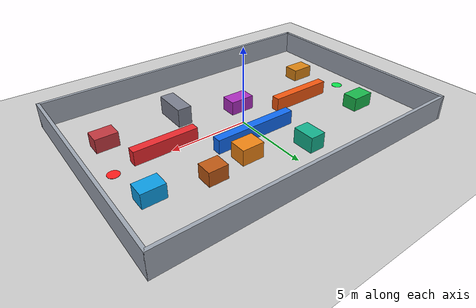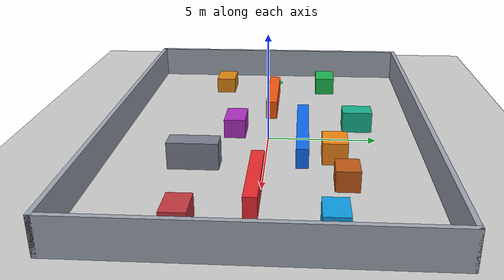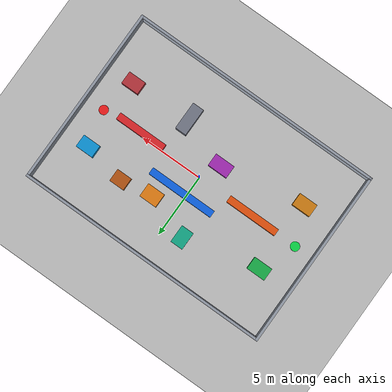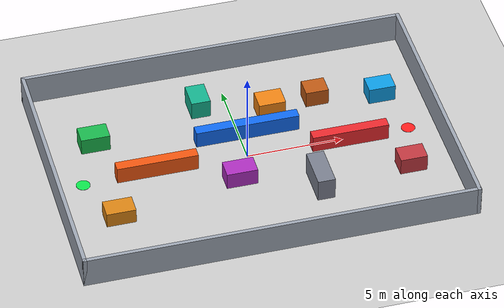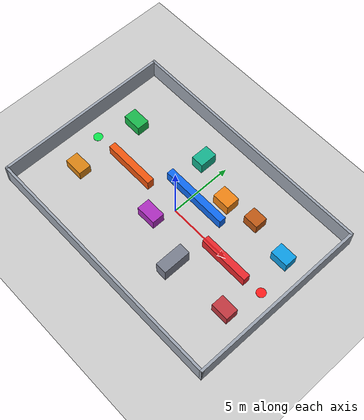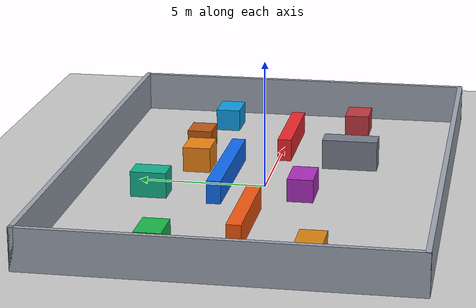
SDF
<?xml version="1.0"?>
<sdf version="1.6">
  <world name="indoor_obstacle_course_large">
    <include>
      <uri>model://ground_plane</uri>
    </include>
    <include>
      <uri>model://sun</uri>
    </include>

    <scene>
      <ambient>0.65 0.65 0.65 1</ambient>
      <background>0.82 0.86 0.90 1</background>
      <shadows>true</shadows>
      <grid>false</grid>
    </scene>

    <physics type="ode">
      <real_time_update_rate>1000.0</real_time_update_rate>
      <max_step_size>0.001</max_step_size>
      <real_time_factor>1</real_time_factor>
      <ode>
        <solver>
          <type>quick</type>
          <iters>150</iters>
          <sor>1.4</sor>
        </solver>
        <constraints>
          <cfm>0.00001</cfm>
          <erp>0.2</erp>
          <contact_max_correcting_vel>2000</contact_max_correcting_vel>
          <contact_surface_layer>0.01</contact_surface_layer>
        </constraints>
      </ode>
    </physics>

    <!-- Publish Gazebo ground truth for benchmark plots. This is observation
         only; navigation still uses RGB-D, RTAB-Map and simulated odometry. -->
    <plugin name="gazebo_ros_state" filename="libgazebo_ros_state.so">
      <ros>
        <namespace>/gazebo</namespace>
        <remapping>model_states:=model_states</remapping>
      </ros>
      <update_rate>30.0</update_rate>
    </plugin>

    <!-- A 20 m x 14 m enclosed room. The A and B markers are at (-8.5, 0)
         and (8.5, 0); the straight line is blocked by three offset bars. -->
    <model name="wall_north">
      <static>true</static>
      <pose>0 7.0 0.8 0 0 0</pose>
      <link name="link">
        <collision name="collision"><geometry><box><size>20.2 0.2 1.6</size></box></geometry></collision>
        <visual name="visual">
          <geometry><box><size>20.2 0.2 1.6</size></box></geometry>
          <material><ambient>0.55 0.58 0.62 1</ambient><diffuse>0.62 0.65 0.70 1</diffuse></material>
        </visual>
      </link>
    </model>
    <model name="wall_south">
      <static>true</static>
      <pose>0 -7.0 0.8 0 0 0</pose>
      <link name="link">
        <collision name="collision"><geometry><box><size>20.2 0.2 1.6</size></box></geometry></collision>
        <visual name="visual">
          <geometry><box><size>20.2 0.2 1.6</size></box></geometry>
          <material><ambient>0.55 0.58 0.62 1</ambient><diffuse>0.62 0.65 0.70 1</diffuse></material>
        </visual>
      </link>
    </model>
    <model name="wall_east">
      <static>true</static>
      <pose>10.0 0 0.8 0 0 0</pose>
      <link name="link">
        <collision name="collision"><geometry><box><size>0.2 14.2 1.6</size></box></geometry></collision>
        <visual name="visual">
          <geometry><box><size>0.2 14.2 1.6</size></box></geometry>
          <material><ambient>0.55 0.58 0.62 1</ambient><diffuse>0.62 0.65 0.70 1</diffuse></material>
        </visual>
      </link>
    </model>
    <model name="wall_west">
      <static>true</static>
      <pose>-10.0 0 0.8 0 0 0</pose>
      <link name="link">
        <collision name="collision"><geometry><box><size>0.2 14.2 1.6</size></box></geometry></collision>
        <visual name="visual">
          <geometry><box><size>0.2 14.2 1.6</size></box></geometry>
          <material><ambient>0.55 0.58 0.62 1</ambient><diffuse>0.62 0.65 0.70 1</diffuse></material>
        </visual>
      </link>
    </model>

    <model name="barrier_west">
      <static>true</static><pose>-4.7 0.0 0.45 0 0 0</pose>
      <link name="link">
        <collision name="collision"><geometry><box><size>4.2 0.55 0.9</size></box></geometry></collision>
        <visual name="visual"><geometry><box><size>4.2 0.55 0.9</size></box></geometry>
          <material><ambient>0.85 0.28 0.05 1</ambient><diffuse>0.95 0.34 0.06 1</diffuse></material></visual>
      </link>
    </model>
    <model name="barrier_center">
      <static>true</static><pose>0.4 1.6 0.45 0 0 0</pose>
      <link name="link">
        <collision name="collision"><geometry><box><size>5.4 0.55 0.9</size></box></geometry></collision>
        <visual name="visual"><geometry><box><size>5.4 0.55 0.9</size></box></geometry>
          <material><ambient>0.08 0.32 0.78 1</ambient><diffuse>0.06 0.42 0.95 1</diffuse></material></visual>
      </link>
    </model>
    <model name="barrier_east">
      <static>true</static><pose>5.3 -0.25 0.45 0 0 0</pose>
      <link name="link">
        <collision name="collision"><geometry><box><size>4.0 0.55 0.9</size></box></geometry></collision>
        <visual name="visual"><geometry><box><size>4.0 0.55 0.9</size></box></geometry>
          <material><ambient>0.78 0.12 0.14 1</ambient><diffuse>0.92 0.16 0.18 1</diffuse></material></visual>
      </link>
    </model>

    <!-- Additional furniture keeps both sides of the bars meaningful while
         preserving broad, observable routes rather than narrow slits. -->
    <model name="crate_west_north">
      <static>true</static><pose>-7.3 2.8 0.45 0 0 0</pose>
      <link name="link"><collision name="collision"><geometry><box><size>1.5 1.0 0.9</size></box></geometry></collision>
        <visual name="visual"><geometry><box><size>1.5 1.0 0.9</size></box></geometry>
          <material><ambient>0.08 0.58 0.25 1</ambient><diffuse>0.10 0.72 0.30 1</diffuse></material></visual></link>
    </model>
    <model name="crate_west_south">
      <static>true</static><pose>-7.3 -2.8 0.4 0 0 0</pose>
      <link name="link"><collision name="collision"><geometry><box><size>1.5 1.0 0.8</size></box></geometry></collision>
        <visual name="visual"><geometry><box><size>1.5 1.0 0.8</size></box></geometry>
          <material><ambient>0.72 0.42 0.06 1</ambient><diffuse>0.86 0.52 0.08 1</diffuse></material></visual></link>
    </model>
    <model name="crate_center_south">
      <static>true</static><pose>-0.8 -1.6 0.45 0 0 0</pose>
      <link name="link"><collision name="collision"><geometry><box><size>1.6 1.0 0.9</size></box></geometry></collision>
        <visual name="visual"><geometry><box><size>1.6 1.0 0.9</size></box></geometry>
          <material><ambient>0.52 0.12 0.58 1</ambient><diffuse>0.68 0.18 0.75 1</diffuse></material></visual></link>
    </model>
    <model name="crate_center_north">
      <static>true</static><pose>2.0 3.0 0.5 0 0 0</pose>
      <link name="link"><collision name="collision"><geometry><box><size>1.4 1.1 1.0</size></box></geometry></collision>
        <visual name="visual"><geometry><box><size>1.4 1.1 1.0</size></box></geometry>
          <material><ambient>0.78 0.40 0.06 1</ambient><diffuse>0.94 0.52 0.08 1</diffuse></material></visual></link>
    </model>
    <model name="crate_east_north">
      <static>true</static><pose>7.8 2.8 0.45 0 0 0</pose>
      <link name="link"><collision name="collision"><geometry><box><size>1.4 1.0 0.9</size></box></geometry></collision>
        <visual name="visual"><geometry><box><size>1.4 1.0 0.9</size></box></geometry>
          <material><ambient>0.04 0.48 0.72 1</ambient><diffuse>0.05 0.62 0.90 1</diffuse></material></visual></link>
    </model>
    <model name="crate_east_south">
      <static>true</static><pose>7.8 -2.8 0.45 0 0 0</pose>
      <link name="link"><collision name="collision"><geometry><box><size>1.4 1.0 0.9</size></box></geometry></collision>
        <visual name="visual"><geometry><box><size>1.4 1.0 0.9</size></box></geometry>
          <material><ambient>0.58 0.16 0.20 1</ambient><diffuse>0.76 0.22 0.25 1</diffuse></material></visual></link>
    </model>
    <model name="pillar_south">
      <static>true</static><pose>3.0 -3.0 0.6 0 0 0</pose>
      <link name="link"><collision name="collision"><geometry><box><size>0.9 2.2 1.2</size></box></geometry></collision>
        <visual name="visual"><geometry><box><size>0.9 2.2 1.2</size></box></geometry>
          <material><ambient>0.36 0.36 0.40 1</ambient><diffuse>0.48 0.50 0.56 1</diffuse></material></visual></link>
    </model>
    <model name="crate_north_west">
      <static>true</static><pose>-1.5 4.2 0.5 0 0 0</pose>
      <link name="link"><collision name="collision"><geometry><box><size>1.0 1.4 1.0</size></box></geometry></collision>
        <visual name="visual"><geometry><box><size>1.0 1.4 1.0</size></box></geometry>
          <material><ambient>0.06 0.54 0.45 1</ambient><diffuse>0.08 0.70 0.56 1</diffuse></material></visual></link>
    </model>
    <model name="crate_north_east">
      <static>true</static><pose>4.5 3.4 0.45 0 0 0</pose>
      <link name="link"><collision name="collision"><geometry><box><size>1.2 1.0 0.9</size></box></geometry></collision>
        <visual name="visual"><geometry><box><size>1.2 1.0 0.9</size></box></geometry>
          <material><ambient>0.58 0.26 0.06 1</ambient><diffuse>0.75 0.35 0.08 1</diffuse></material></visual></link>
    </model>

    <!-- Flat markers: green is A, red is B. They have no collision geometry. -->
    <model name="start_marker">
      <static>true</static><pose>-8.5 0.0 0.006 0 0 0</pose>
      <link name="link"><visual name="visual"><geometry><cylinder><radius>0.36</radius><length>0.012</length></cylinder></geometry>
        <material><ambient>0.05 0.75 0.25 1</ambient><diffuse>0.05 0.90 0.30 1</diffuse></material></visual></link>
    </model>
    <model name="goal_marker">
      <static>true</static><pose>8.5 0.0 0.007 0 0 0</pose>
      <link name="link"><visual name="visual"><geometry><cylinder><radius>0.36</radius><length>0.014</length></cylinder></geometry>
        <material><ambient>0.90 0.08 0.08 1</ambient><diffuse>1.0 0.12 0.12 1</diffuse></material></visual></link>
    </model>

    <gui fullscreen="0">
      <camera name="user_camera">
        <pose>0 0 22.0 0 1.5708 0</pose>
        <view_controller>orbit</view_controller>
        <projection_type>perspective</projection_type>
      </camera>
    </gui>
  </world>
</sdf>
